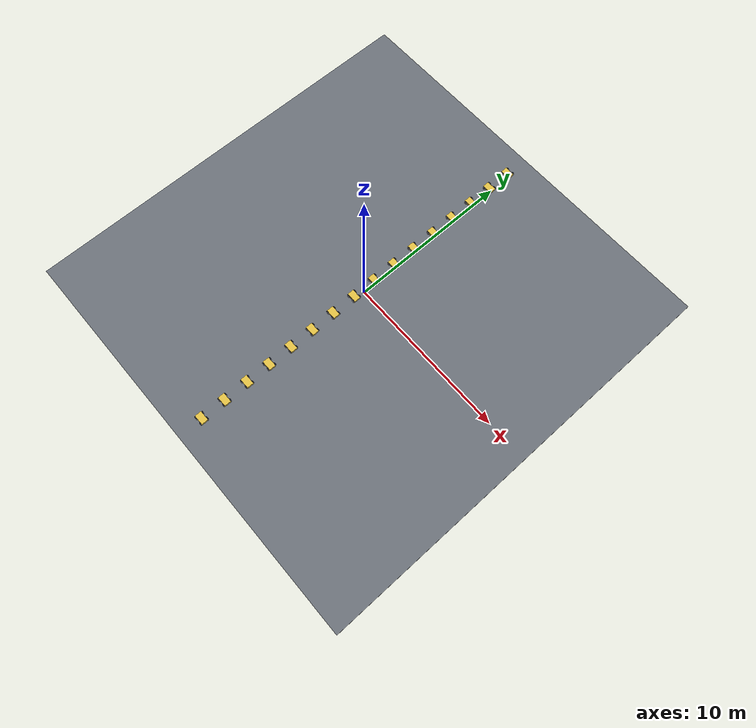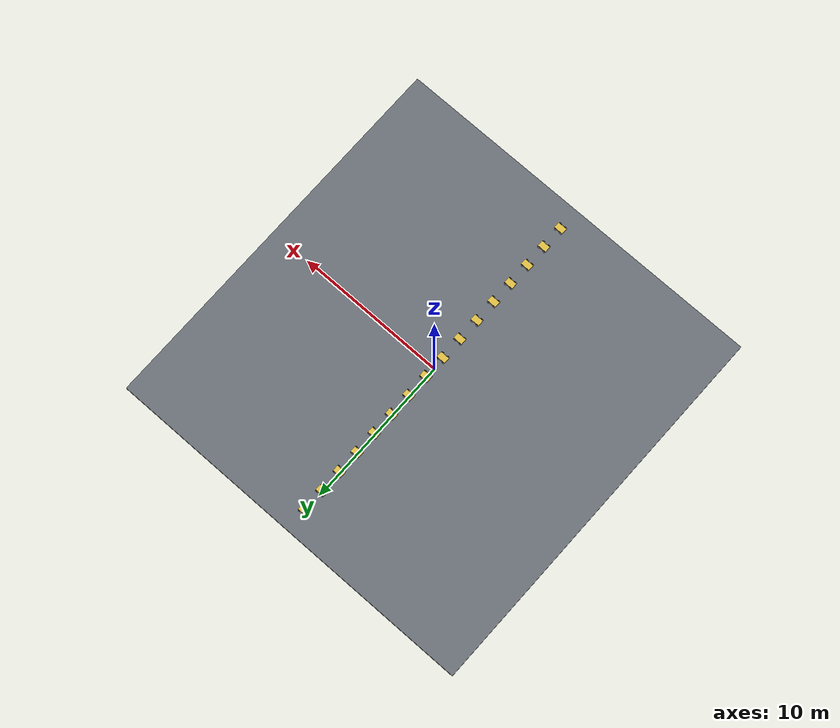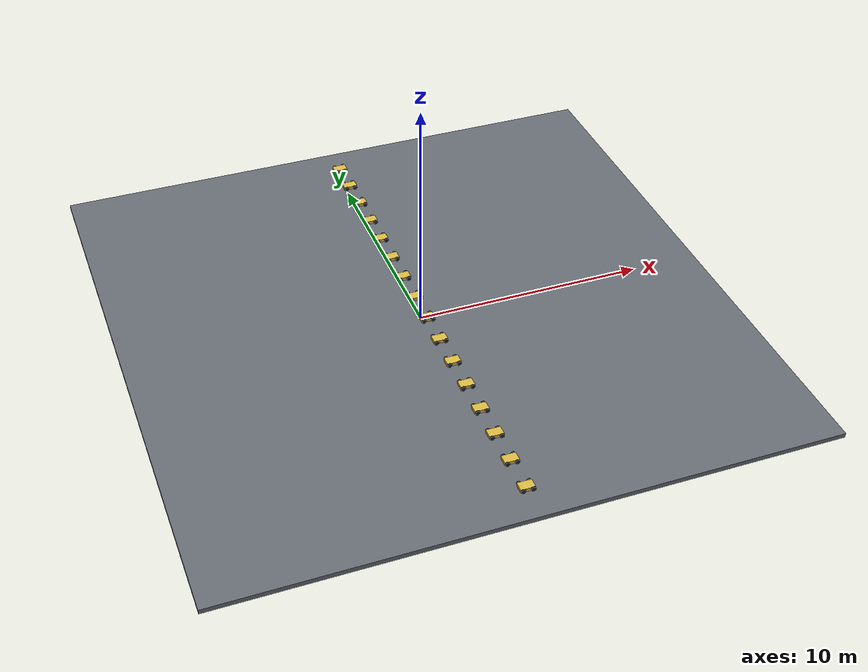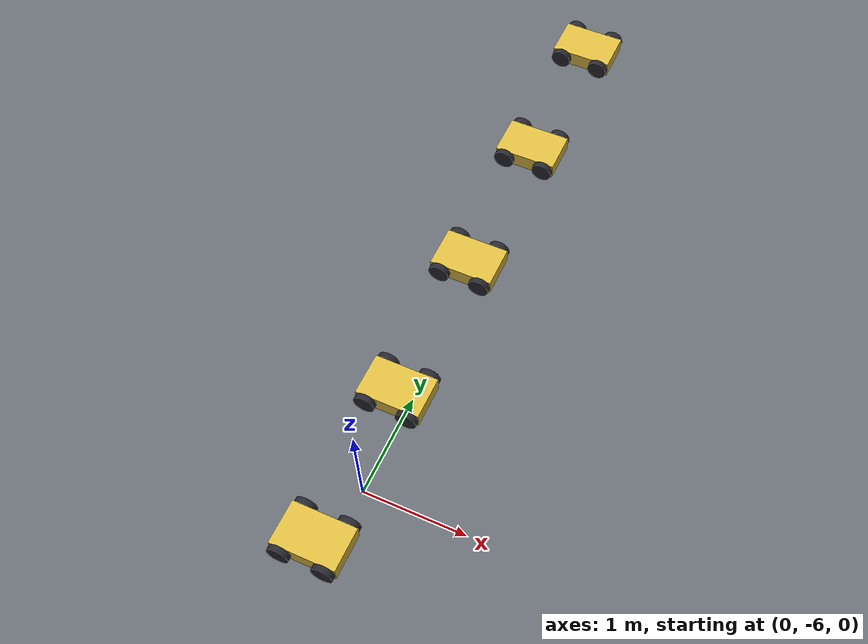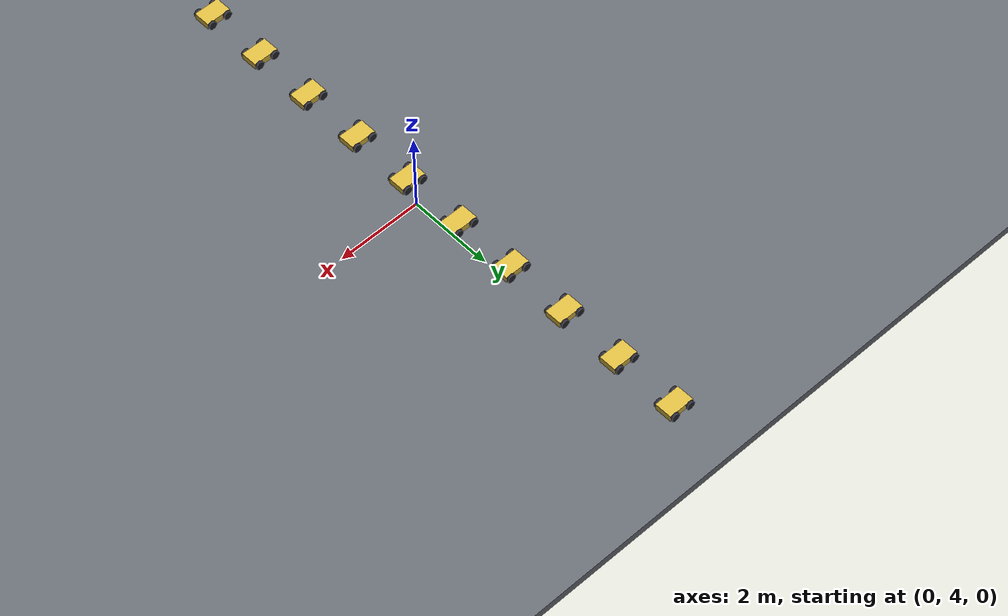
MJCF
<mujoco model="ladder0_rung11_mujoco">

  <!-- Only gravity and the timestep are set from the contract.  Everything
       else is MuJoCo's default, on purpose: this arm is the un-tuned
       reference for the solver OmniSim runs underneath. -->
  <option timestep="0.004" gravity="0 0 -9.81"/>

  <default>
    <!-- sliding / torsional / rolling.  condim defaults to 3, so only the
         first component is in force; the rest are declared for the record. -->
    <geom friction="1.0 0.005 0.0001"/>
  </default>

  <worldbody>
    <!-- Floor slab: full extents 25.200000000000003 x 25.5 x 0.2 m centred at z=0.4,
         so its top surface is at z=0.5.  Deliberately NOT at z=0. -->
    <geom name="floor" type="box" size="12.600000000000001 12.75 0.1" pos="0 0 0.4"
          rgba="0.4 0.42 0.45 1"/>

    <!-- r00: lane y = -11.250 m, commanded 2.0 rad/s -->
    <body name="r00_chassis" pos="0 -11.25 0.6">
      <freejoint name="r00_chassis_free"/>
      <geom name="r00_chassis_geom" type="box" size="0.3 0.2 0.075"
            mass="5.0" rgba="0.85 0.72 0.25 1"/>

      <body name="r00_fl" pos="0.2 0.225 0">
        <joint name="r00_fl_joint" type="hinge" axis="0 1 0"/>
        <geom name="r00_fl_geom" type="cylinder"
              fromto="0 -0.025 0  0 0.025 0" size="0.1" mass="0.5"
              rgba="0.15 0.15 0.18 1"/>
      </body>

      <body name="r00_fr" pos="0.2 -0.225 0">
        <joint name="r00_fr_joint" type="hinge" axis="0 1 0"/>
        <geom name="r00_fr_geom" type="cylinder"
              fromto="0 -0.025 0  0 0.025 0" size="0.1" mass="0.5"
              rgba="0.15 0.15 0.18 1"/>
      </body>

      <body name="r00_rl" pos="-0.2 0.225 0">
        <joint name="r00_rl_joint" type="hinge" axis="0 1 0"/>
        <geom name="r00_rl_geom" type="cylinder"
              fromto="0 -0.025 0  0 0.025 0" size="0.1" mass="0.5"
              rgba="0.15 0.15 0.18 1"/>
      </body>

      <body name="r00_rr" pos="-0.2 -0.225 0">
        <joint name="r00_rr_joint" type="hinge" axis="0 1 0"/>
        <geom name="r00_rr_geom" type="cylinder"
              fromto="0 -0.025 0  0 0.025 0" size="0.1" mass="0.5"
              rgba="0.15 0.15 0.18 1"/>
      </body>
    </body>

    <!-- r01: lane y = -9.750 m, commanded 3.0 rad/s -->
    <body name="r01_chassis" pos="0 -9.75 0.6">
      <freejoint name="r01_chassis_free"/>
      <geom name="r01_chassis_geom" type="box" size="0.3 0.2 0.075"
            mass="5.0" rgba="0.85 0.72 0.25 1"/>

      <body name="r01_fl" pos="0.2 0.225 0">
        <joint name="r01_fl_joint" type="hinge" axis="0 1 0"/>
        <geom name="r01_fl_geom" type="cylinder"
              fromto="0 -0.025 0  0 0.025 0" size="0.1" mass="0.5"
              rgba="0.15 0.15 0.18 1"/>
      </body>

      <body name="r01_fr" pos="0.2 -0.225 0">
        <joint name="r01_fr_joint" type="hinge" axis="0 1 0"/>
        <geom name="r01_fr_geom" type="cylinder"
              fromto="0 -0.025 0  0 0.025 0" size="0.1" mass="0.5"
              rgba="0.15 0.15 0.18 1"/>
      </body>

      <body name="r01_rl" pos="-0.2 0.225 0">
        <joint name="r01_rl_joint" type="hinge" axis="0 1 0"/>
        <geom name="r01_rl_geom" type="cylinder"
              fromto="0 -0.025 0  0 0.025 0" size="0.1" mass="0.5"
              rgba="0.15 0.15 0.18 1"/>
      </body>

      <body name="r01_rr" pos="-0.2 -0.225 0">
        <joint name="r01_rr_joint" type="hinge" axis="0 1 0"/>
        <geom name="r01_rr_geom" type="cylinder"
              fromto="0 -0.025 0  0 0.025 0" size="0.1" mass="0.5"
              rgba="0.15 0.15 0.18 1"/>
      </body>
    </body>

    <!-- r02: lane y = -8.250 m, commanded 4.0 rad/s -->
    <body name="r02_chassis" pos="0 -8.25 0.6">
      <freejoint name="r02_chassis_free"/>
      <geom name="r02_chassis_geom" type="box" size="0.3 0.2 0.075"
            mass="5.0" rgba="0.85 0.72 0.25 1"/>

      <body name="r02_fl" pos="0.2 0.225 0">
        <joint name="r02_fl_joint" type="hinge" axis="0 1 0"/>
        <geom name="r02_fl_geom" type="cylinder"
              fromto="0 -0.025 0  0 0.025 0" size="0.1" mass="0.5"
              rgba="0.15 0.15 0.18 1"/>
      </body>

      <body name="r02_fr" pos="0.2 -0.225 0">
        <joint name="r02_fr_joint" type="hinge" axis="0 1 0"/>
        <geom name="r02_fr_geom" type="cylinder"
              fromto="0 -0.025 0  0 0.025 0" size="0.1" mass="0.5"
              rgba="0.15 0.15 0.18 1"/>
      </body>

      <body name="r02_rl" pos="-0.2 0.225 0">
        <joint name="r02_rl_joint" type="hinge" axis="0 1 0"/>
        <geom name="r02_rl_geom" type="cylinder"
              fromto="0 -0.025 0  0 0.025 0" size="0.1" mass="0.5"
              rgba="0.15 0.15 0.18 1"/>
      </body>

      <body name="r02_rr" pos="-0.2 -0.225 0">
        <joint name="r02_rr_joint" type="hinge" axis="0 1 0"/>
        <geom name="r02_rr_geom" type="cylinder"
              fromto="0 -0.025 0  0 0.025 0" size="0.1" mass="0.5"
              rgba="0.15 0.15 0.18 1"/>
      </body>
    </body>

    <!-- r03: lane y = -6.750 m, commanded 5.0 rad/s -->
    <body name="r03_chassis" pos="0 -6.75 0.6">
      <freejoint name="r03_chassis_free"/>
      <geom name="r03_chassis_geom" type="box" size="0.3 0.2 0.075"
            mass="5.0" rgba="0.85 0.72 0.25 1"/>

      <body name="r03_fl" pos="0.2 0.225 0">
        <joint name="r03_fl_joint" type="hinge" axis="0 1 0"/>
        <geom name="r03_fl_geom" type="cylinder"
              fromto="0 -0.025 0  0 0.025 0" size="0.1" mass="0.5"
              rgba="0.15 0.15 0.18 1"/>
      </body>

      <body name="r03_fr" pos="0.2 -0.225 0">
        <joint name="r03_fr_joint" type="hinge" axis="0 1 0"/>
        <geom name="r03_fr_geom" type="cylinder"
              fromto="0 -0.025 0  0 0.025 0" size="0.1" mass="0.5"
              rgba="0.15 0.15 0.18 1"/>
      </body>

      <body name="r03_rl" pos="-0.2 0.225 0">
        <joint name="r03_rl_joint" type="hinge" axis="0 1 0"/>
        <geom name="r03_rl_geom" type="cylinder"
              fromto="0 -0.025 0  0 0.025 0" size="0.1" mass="0.5"
              rgba="0.15 0.15 0.18 1"/>
      </body>

      <body name="r03_rr" pos="-0.2 -0.225 0">
        <joint name="r03_rr_joint" type="hinge" axis="0 1 0"/>
        <geom name="r03_rr_geom" type="cylinder"
              fromto="0 -0.025 0  0 0.025 0" size="0.1" mass="0.5"
              rgba="0.15 0.15 0.18 1"/>
      </body>
    </body>

    <!-- r04: lane y = -5.250 m, commanded 6.0 rad/s -->
    <body name="r04_chassis" pos="0 -5.25 0.6">
      <freejoint name="r04_chassis_free"/>
      <geom name="r04_chassis_geom" type="box" size="0.3 0.2 0.075"
            mass="5.0" rgba="0.85 0.72 0.25 1"/>

      <body name="r04_fl" pos="0.2 0.225 0">
        <joint name="r04_fl_joint" type="hinge" axis="0 1 0"/>
        <geom name="r04_fl_geom" type="cylinder"
              fromto="0 -0.025 0  0 0.025 0" size="0.1" mass="0.5"
              rgba="0.15 0.15 0.18 1"/>
      </body>

      <body name="r04_fr" pos="0.2 -0.225 0">
        <joint name="r04_fr_joint" type="hinge" axis="0 1 0"/>
        <geom name="r04_fr_geom" type="cylinder"
              fromto="0 -0.025 0  0 0.025 0" size="0.1" mass="0.5"
              rgba="0.15 0.15 0.18 1"/>
      </body>

      <body name="r04_rl" pos="-0.2 0.225 0">
        <joint name="r04_rl_joint" type="hinge" axis="0 1 0"/>
        <geom name="r04_rl_geom" type="cylinder"
              fromto="0 -0.025 0  0 0.025 0" size="0.1" mass="0.5"
              rgba="0.15 0.15 0.18 1"/>
      </body>

      <body name="r04_rr" pos="-0.2 -0.225 0">
        <joint name="r04_rr_joint" type="hinge" axis="0 1 0"/>
        <geom name="r04_rr_geom" type="cylinder"
              fromto="0 -0.025 0  0 0.025 0" size="0.1" mass="0.5"
              rgba="0.15 0.15 0.18 1"/>
      </body>
    </body>

    <!-- r05: lane y = -3.750 m, commanded 2.0 rad/s -->
    <body name="r05_chassis" pos="0 -3.75 0.6">
      <freejoint name="r05_chassis_free"/>
      <geom name="r05_chassis_geom" type="box" size="0.3 0.2 0.075"
            mass="5.0" rgba="0.85 0.72 0.25 1"/>

      <body name="r05_fl" pos="0.2 0.225 0">
        <joint name="r05_fl_joint" type="hinge" axis="0 1 0"/>
        <geom name="r05_fl_geom" type="cylinder"
              fromto="0 -0.025 0  0 0.025 0" size="0.1" mass="0.5"
              rgba="0.15 0.15 0.18 1"/>
      </body>

      <body name="r05_fr" pos="0.2 -0.225 0">
        <joint name="r05_fr_joint" type="hinge" axis="0 1 0"/>
        <geom name="r05_fr_geom" type="cylinder"
              fromto="0 -0.025 0  0 0.025 0" size="0.1" mass="0.5"
              rgba="0.15 0.15 0.18 1"/>
      </body>

      <body name="r05_rl" pos="-0.2 0.225 0">
        <joint name="r05_rl_joint" type="hinge" axis="0 1 0"/>
        <geom name="r05_rl_geom" type="cylinder"
              fromto="0 -0.025 0  0 0.025 0" size="0.1" mass="0.5"
              rgba="0.15 0.15 0.18 1"/>
      </body>

      <body name="r05_rr" pos="-0.2 -0.225 0">
        <joint name="r05_rr_joint" type="hinge" axis="0 1 0"/>
        <geom name="r05_rr_geom" type="cylinder"
              fromto="0 -0.025 0  0 0.025 0" size="0.1" mass="0.5"
              rgba="0.15 0.15 0.18 1"/>
      </body>
    </body>

    <!-- r06: lane y = -2.250 m, commanded 3.0 rad/s -->
    <body name="r06_chassis" pos="0 -2.25 0.6">
      <freejoint name="r06_chassis_free"/>
      <geom name="r06_chassis_geom" type="box" size="0.3 0.2 0.075"
            mass="5.0" rgba="0.85 0.72 0.25 1"/>

      <body name="r06_fl" pos="0.2 0.225 0">
        <joint name="r06_fl_joint" type="hinge" axis="0 1 0"/>
        <geom name="r06_fl_geom" type="cylinder"
              fromto="0 -0.025 0  0 0.025 0" size="0.1" mass="0.5"
              rgba="0.15 0.15 0.18 1"/>
      </body>

      <body name="r06_fr" pos="0.2 -0.225 0">
        <joint name="r06_fr_joint" type="hinge" axis="0 1 0"/>
        <geom name="r06_fr_geom" type="cylinder"
              fromto="0 -0.025 0  0 0.025 0" size="0.1" mass="0.5"
              rgba="0.15 0.15 0.18 1"/>
      </body>

      <body name="r06_rl" pos="-0.2 0.225 0">
        <joint name="r06_rl_joint" type="hinge" axis="0 1 0"/>
        <geom name="r06_rl_geom" type="cylinder"
              fromto="0 -0.025 0  0 0.025 0" size="0.1" mass="0.5"
              rgba="0.15 0.15 0.18 1"/>
      </body>

      <body name="r06_rr" pos="-0.2 -0.225 0">
        <joint name="r06_rr_joint" type="hinge" axis="0 1 0"/>
        <geom name="r06_rr_geom" type="cylinder"
              fromto="0 -0.025 0  0 0.025 0" size="0.1" mass="0.5"
              rgba="0.15 0.15 0.18 1"/>
      </body>
    </body>

    <!-- r07: lane y = -0.750 m, commanded 4.0 rad/s -->
    <body name="r07_chassis" pos="0 -0.75 0.6">
      <freejoint name="r07_chassis_free"/>
      <geom name="r07_chassis_geom" type="box" size="0.3 0.2 0.075"
            mass="5.0" rgba="0.85 0.72 0.25 1"/>

      <body name="r07_fl" pos="0.2 0.225 0">
        <joint name="r07_fl_joint" type="hinge" axis="0 1 0"/>
        <geom name="r07_fl_geom" type="cylinder"
              fromto="0 -0.025 0  0 0.025 0" size="0.1" mass="0.5"
              rgba="0.15 0.15 0.18 1"/>
      </body>

      <body name="r07_fr" pos="0.2 -0.225 0">
        <joint name="r07_fr_joint" type="hinge" axis="0 1 0"/>
        <geom name="r07_fr_geom" type="cylinder"
              fromto="0 -0.025 0  0 0.025 0" size="0.1" mass="0.5"
              rgba="0.15 0.15 0.18 1"/>
      </body>

      <body name="r07_rl" pos="-0.2 0.225 0">
        <joint name="r07_rl_joint" type="hinge" axis="0 1 0"/>
        <geom name="r07_rl_geom" type="cylinder"
              fromto="0 -0.025 0  0 0.025 0" size="0.1" mass="0.5"
              rgba="0.15 0.15 0.18 1"/>
      </body>

      <body name="r07_rr" pos="-0.2 -0.225 0">
        <joint name="r07_rr_joint" type="hinge" axis="0 1 0"/>
        <geom name="r07_rr_geom" type="cylinder"
              fromto="0 -0.025 0  0 0.025 0" size="0.1" mass="0.5"
              rgba="0.15 0.15 0.18 1"/>
      </body>
    </body>

    <!-- r08: lane y = +0.750 m, commanded 5.0 rad/s -->
    <body name="r08_chassis" pos="0 0.75 0.6">
      <freejoint name="r08_chassis_free"/>
      <geom name="r08_chassis_geom" type="box" size="0.3 0.2 0.075"
            mass="5.0" rgba="0.85 0.72 0.25 1"/>

      <body name="r08_fl" pos="0.2 0.225 0">
        <joint name="r08_fl_joint" type="hinge" axis="0 1 0"/>
        <geom name="r08_fl_geom" type="cylinder"
              fromto="0 -0.025 0  0 0.025 0" size="0.1" mass="0.5"
              rgba="0.15 0.15 0.18 1"/>
      </body>

      <body name="r08_fr" pos="0.2 -0.225 0">
        <joint name="r08_fr_joint" type="hinge" axis="0 1 0"/>
        <geom name="r08_fr_geom" type="cylinder"
              fromto="0 -0.025 0  0 0.025 0" size="0.1" mass="0.5"
              rgba="0.15 0.15 0.18 1"/>
      </body>

      <body name="r08_rl" pos="-0.2 0.225 0">
        <joint name="r08_rl_joint" type="hinge" axis="0 1 0"/>
        <geom name="r08_rl_geom" type="cylinder"
              fromto="0 -0.025 0  0 0.025 0" size="0.1" mass="0.5"
              rgba="0.15 0.15 0.18 1"/>
      </body>

      <body name="r08_rr" pos="-0.2 -0.225 0">
        <joint name="r08_rr_joint" type="hinge" axis="0 1 0"/>
        <geom name="r08_rr_geom" type="cylinder"
              fromto="0 -0.025 0  0 0.025 0" size="0.1" mass="0.5"
              rgba="0.15 0.15 0.18 1"/>
      </body>
    </body>

    <!-- r09: lane y = +2.250 m, commanded 6.0 rad/s -->
    <body name="r09_chassis" pos="0 2.25 0.6">
      <freejoint name="r09_chassis_free"/>
      <geom name="r09_chassis_geom" type="box" size="0.3 0.2 0.075"
            mass="5.0" rgba="0.85 0.72 0.25 1"/>

      <body name="r09_fl" pos="0.2 0.225 0">
        <joint name="r09_fl_joint" type="hinge" axis="0 1 0"/>
        <geom name="r09_fl_geom" type="cylinder"
              fromto="0 -0.025 0  0 0.025 0" size="0.1" mass="0.5"
              rgba="0.15 0.15 0.18 1"/>
      </body>

      <body name="r09_fr" pos="0.2 -0.225 0">
        <joint name="r09_fr_joint" type="hinge" axis="0 1 0"/>
        <geom name="r09_fr_geom" type="cylinder"
              fromto="0 -0.025 0  0 0.025 0" size="0.1" mass="0.5"
              rgba="0.15 0.15 0.18 1"/>
      </body>

      <body name="r09_rl" pos="-0.2 0.225 0">
        <joint name="r09_rl_joint" type="hinge" axis="0 1 0"/>
        <geom name="r09_rl_geom" type="cylinder"
              fromto="0 -0.025 0  0 0.025 0" size="0.1" mass="0.5"
              rgba="0.15 0.15 0.18 1"/>
      </body>

      <body name="r09_rr" pos="-0.2 -0.225 0">
        <joint name="r09_rr_joint" type="hinge" axis="0 1 0"/>
        <geom name="r09_rr_geom" type="cylinder"
              fromto="0 -0.025 0  0 0.025 0" size="0.1" mass="0.5"
              rgba="0.15 0.15 0.18 1"/>
      </body>
    </body>

    <!-- r10: lane y = +3.750 m, commanded 2.0 rad/s -->
    <body name="r10_chassis" pos="0 3.75 0.6">
      <freejoint name="r10_chassis_free"/>
      <geom name="r10_chassis_geom" type="box" size="0.3 0.2 0.075"
            mass="5.0" rgba="0.85 0.72 0.25 1"/>

      <body name="r10_fl" pos="0.2 0.225 0">
        <joint name="r10_fl_joint" type="hinge" axis="0 1 0"/>
        <geom name="r10_fl_geom" type="cylinder"
              fromto="0 -0.025 0  0 0.025 0" size="0.1" mass="0.5"
              rgba="0.15 0.15 0.18 1"/>
      </body>

      <body name="r10_fr" pos="0.2 -0.225 0">
        <joint name="r10_fr_joint" type="hinge" axis="0 1 0"/>
        <geom name="r10_fr_geom" type="cylinder"
              fromto="0 -0.025 0  0 0.025 0" size="0.1" mass="0.5"
              rgba="0.15 0.15 0.18 1"/>
      </body>

      <body name="r10_rl" pos="-0.2 0.225 0">
        <joint name="r10_rl_joint" type="hinge" axis="0 1 0"/>
        <geom name="r10_rl_geom" type="cylinder"
              fromto="0 -0.025 0  0 0.025 0" size="0.1" mass="0.5"
              rgba="0.15 0.15 0.18 1"/>
      </body>

      <body name="r10_rr" pos="-0.2 -0.225 0">
        <joint name="r10_rr_joint" type="hinge" axis="0 1 0"/>
        <geom name="r10_rr_geom" type="cylinder"
              fromto="0 -0.025 0  0 0.025 0" size="0.1" mass="0.5"
              rgba="0.15 0.15 0.18 1"/>
      </body>
    </body>

    <!-- r11: lane y = +5.250 m, commanded 3.0 rad/s -->
    <body name="r11_chassis" pos="0 5.25 0.6">
      <freejoint name="r11_chassis_free"/>
      <geom name="r11_chassis_geom" type="box" size="0.3 0.2 0.075"
            mass="5.0" rgba="0.85 0.72 0.25 1"/>

      <body name="r11_fl" pos="0.2 0.225 0">
        <joint name="r11_fl_joint" type="hinge" axis="0 1 0"/>
        <geom name="r11_fl_geom" type="cylinder"
              fromto="0 -0.025 0  0 0.025 0" size="0.1" mass="0.5"
              rgba="0.15 0.15 0.18 1"/>
      </body>

      <body name="r11_fr" pos="0.2 -0.225 0">
        <joint name="r11_fr_joint" type="hinge" axis="0 1 0"/>
        <geom name="r11_fr_geom" type="cylinder"
              fromto="0 -0.025 0  0 0.025 0" size="0.1" mass="0.5"
              rgba="0.15 0.15 0.18 1"/>
      </body>

      <body name="r11_rl" pos="-0.2 0.225 0">
        <joint name="r11_rl_joint" type="hinge" axis="0 1 0"/>
        <geom name="r11_rl_geom" type="cylinder"
              fromto="0 -0.025 0  0 0.025 0" size="0.1" mass="0.5"
              rgba="0.15 0.15 0.18 1"/>
      </body>

      <body name="r11_rr" pos="-0.2 -0.225 0">
        <joint name="r11_rr_joint" type="hinge" axis="0 1 0"/>
        <geom name="r11_rr_geom" type="cylinder"
              fromto="0 -0.025 0  0 0.025 0" size="0.1" mass="0.5"
              rgba="0.15 0.15 0.18 1"/>
      </body>
    </body>

    <!-- r12: lane y = +6.750 m, commanded 4.0 rad/s -->
    <body name="r12_chassis" pos="0 6.75 0.6">
      <freejoint name="r12_chassis_free"/>
      <geom name="r12_chassis_geom" type="box" size="0.3 0.2 0.075"
            mass="5.0" rgba="0.85 0.72 0.25 1"/>

      <body name="r12_fl" pos="0.2 0.225 0">
        <joint name="r12_fl_joint" type="hinge" axis="0 1 0"/>
        <geom name="r12_fl_geom" type="cylinder"
              fromto="0 -0.025 0  0 0.025 0" size="0.1" mass="0.5"
              rgba="0.15 0.15 0.18 1"/>
      </body>

      <body name="r12_fr" pos="0.2 -0.225 0">
        <joint name="r12_fr_joint" type="hinge" axis="0 1 0"/>
        <geom name="r12_fr_geom" type="cylinder"
              fromto="0 -0.025 0  0 0.025 0" size="0.1" mass="0.5"
              rgba="0.15 0.15 0.18 1"/>
      </body>

      <body name="r12_rl" pos="-0.2 0.225 0">
        <joint name="r12_rl_joint" type="hinge" axis="0 1 0"/>
        <geom name="r12_rl_geom" type="cylinder"
              fromto="0 -0.025 0  0 0.025 0" size="0.1" mass="0.5"
              rgba="0.15 0.15 0.18 1"/>
      </body>

      <body name="r12_rr" pos="-0.2 -0.225 0">
        <joint name="r12_rr_joint" type="hinge" axis="0 1 0"/>
        <geom name="r12_rr_geom" type="cylinder"
              fromto="0 -0.025 0  0 0.025 0" size="0.1" mass="0.5"
              rgba="0.15 0.15 0.18 1"/>
      </body>
    </body>

    <!-- r13: lane y = +8.250 m, commanded 5.0 rad/s -->
    <body name="r13_chassis" pos="0 8.25 0.6">
      <freejoint name="r13_chassis_free"/>
      <geom name="r13_chassis_geom" type="box" size="0.3 0.2 0.075"
            mass="5.0" rgba="0.85 0.72 0.25 1"/>

      <body name="r13_fl" pos="0.2 0.225 0">
        <joint name="r13_fl_joint" type="hinge" axis="0 1 0"/>
        <geom name="r13_fl_geom" type="cylinder"
              fromto="0 -0.025 0  0 0.025 0" size="0.1" mass="0.5"
              rgba="0.15 0.15 0.18 1"/>
      </body>

      <body name="r13_fr" pos="0.2 -0.225 0">
        <joint name="r13_fr_joint" type="hinge" axis="0 1 0"/>
        <geom name="r13_fr_geom" type="cylinder"
              fromto="0 -0.025 0  0 0.025 0" size="0.1" mass="0.5"
              rgba="0.15 0.15 0.18 1"/>
      </body>

      <body name="r13_rl" pos="-0.2 0.225 0">
        <joint name="r13_rl_joint" type="hinge" axis="0 1 0"/>
        <geom name="r13_rl_geom" type="cylinder"
              fromto="0 -0.025 0  0 0.025 0" size="0.1" mass="0.5"
              rgba="0.15 0.15 0.18 1"/>
      </body>

      <body name="r13_rr" pos="-0.2 -0.225 0">
        <joint name="r13_rr_joint" type="hinge" axis="0 1 0"/>
        <geom name="r13_rr_geom" type="cylinder"
              fromto="0 -0.025 0  0 0.025 0" size="0.1" mass="0.5"
              rgba="0.15 0.15 0.18 1"/>
      </body>
    </body>

    <!-- r14: lane y = +9.750 m, commanded 6.0 rad/s -->
    <body name="r14_chassis" pos="0 9.75 0.6">
      <freejoint name="r14_chassis_free"/>
      <geom name="r14_chassis_geom" type="box" size="0.3 0.2 0.075"
            mass="5.0" rgba="0.85 0.72 0.25 1"/>

      <body name="r14_fl" pos="0.2 0.225 0">
        <joint name="r14_fl_joint" type="hinge" axis="0 1 0"/>
        <geom name="r14_fl_geom" type="cylinder"
              fromto="0 -0.025 0  0 0.025 0" size="0.1" mass="0.5"
              rgba="0.15 0.15 0.18 1"/>
      </body>

      <body name="r14_fr" pos="0.2 -0.225 0">
        <joint name="r14_fr_joint" type="hinge" axis="0 1 0"/>
        <geom name="r14_fr_geom" type="cylinder"
              fromto="0 -0.025 0  0 0.025 0" size="0.1" mass="0.5"
              rgba="0.15 0.15 0.18 1"/>
      </body>

      <body name="r14_rl" pos="-0.2 0.225 0">
        <joint name="r14_rl_joint" type="hinge" axis="0 1 0"/>
        <geom name="r14_rl_geom" type="cylinder"
              fromto="0 -0.025 0  0 0.025 0" size="0.1" mass="0.5"
              rgba="0.15 0.15 0.18 1"/>
      </body>

      <body name="r14_rr" pos="-0.2 -0.225 0">
        <joint name="r14_rr_joint" type="hinge" axis="0 1 0"/>
        <geom name="r14_rr_geom" type="cylinder"
              fromto="0 -0.025 0  0 0.025 0" size="0.1" mass="0.5"
              rgba="0.15 0.15 0.18 1"/>
      </body>
    </body>

    <!-- r15: lane y = +11.250 m, commanded 2.0 rad/s -->
    <body name="r15_chassis" pos="0 11.25 0.6">
      <freejoint name="r15_chassis_free"/>
      <geom name="r15_chassis_geom" type="box" size="0.3 0.2 0.075"
            mass="5.0" rgba="0.85 0.72 0.25 1"/>

      <body name="r15_fl" pos="0.2 0.225 0">
        <joint name="r15_fl_joint" type="hinge" axis="0 1 0"/>
        <geom name="r15_fl_geom" type="cylinder"
              fromto="0 -0.025 0  0 0.025 0" size="0.1" mass="0.5"
              rgba="0.15 0.15 0.18 1"/>
      </body>

      <body name="r15_fr" pos="0.2 -0.225 0">
        <joint name="r15_fr_joint" type="hinge" axis="0 1 0"/>
        <geom name="r15_fr_geom" type="cylinder"
              fromto="0 -0.025 0  0 0.025 0" size="0.1" mass="0.5"
              rgba="0.15 0.15 0.18 1"/>
      </body>

      <body name="r15_rl" pos="-0.2 0.225 0">
        <joint name="r15_rl_joint" type="hinge" axis="0 1 0"/>
        <geom name="r15_rl_geom" type="cylinder"
              fromto="0 -0.025 0  0 0.025 0" size="0.1" mass="0.5"
              rgba="0.15 0.15 0.18 1"/>
      </body>

      <body name="r15_rr" pos="-0.2 -0.225 0">
        <joint name="r15_rr_joint" type="hinge" axis="0 1 0"/>
        <geom name="r15_rr_geom" type="cylinder"
              fromto="0 -0.025 0  0 0.025 0" size="0.1" mass="0.5"
              rgba="0.15 0.15 0.18 1"/>
      </body>
    </body>
  </worldbody>

  <actuator>
    <!-- Deadbeat velocity servo: kv = I/dt = 0.625000, half the
         explicit-Euler stability bound 2I/dt, for a wheel's
         own I = m r^2 / 2 = 0.002500 kg m^2. -->
    <velocity name="r00_fl_motor" joint="r00_fl_joint" kv="0.625000"/>
    <velocity name="r00_fr_motor" joint="r00_fr_joint" kv="0.625000"/>
    <velocity name="r00_rl_motor" joint="r00_rl_joint" kv="0.625000"/>
    <velocity name="r00_rr_motor" joint="r00_rr_joint" kv="0.625000"/>
    <!-- Deadbeat velocity servo: kv = I/dt = 0.625000, half the
         explicit-Euler stability bound 2I/dt, for a wheel's
         own I = m r^2 / 2 = 0.002500 kg m^2. -->
    <velocity name="r01_fl_motor" joint="r01_fl_joint" kv="0.625000"/>
    <velocity name="r01_fr_motor" joint="r01_fr_joint" kv="0.625000"/>
    <velocity name="r01_rl_motor" joint="r01_rl_joint" kv="0.625000"/>
    <velocity name="r01_rr_motor" joint="r01_rr_joint" kv="0.625000"/>
    <!-- Deadbeat velocity servo: kv = I/dt = 0.625000, half the
         explicit-Euler stability bound 2I/dt, for a wheel's
         own I = m r^2 / 2 = 0.002500 kg m^2. -->
    <velocity name="r02_fl_motor" joint="r02_fl_joint" kv="0.625000"/>
    <velocity name="r02_fr_motor" joint="r02_fr_joint" kv="0.625000"/>
    <velocity name="r02_rl_motor" joint="r02_rl_joint" kv="0.625000"/>
    <velocity name="r02_rr_motor" joint="r02_rr_joint" kv="0.625000"/>
    <!-- Deadbeat velocity servo: kv = I/dt = 0.625000, half the
         explicit-Euler stability bound 2I/dt, for a wheel's
         own I = m r^2 / 2 = 0.002500 kg m^2. -->
    <velocity name="r03_fl_motor" joint="r03_fl_joint" kv="0.625000"/>
    <velocity name="r03_fr_motor" joint="r03_fr_joint" kv="0.625000"/>
    <velocity name="r03_rl_motor" joint="r03_rl_joint" kv="0.625000"/>
    <velocity name="r03_rr_motor" joint="r03_rr_joint" kv="0.625000"/>
    <!-- Deadbeat velocity servo: kv = I/dt = 0.625000, half the
         explicit-Euler stability bound 2I/dt, for a wheel's
         own I = m r^2 / 2 = 0.002500 kg m^2. -->
    <velocity name="r04_fl_motor" joint="r04_fl_joint" kv="0.625000"/>
    <velocity name="r04_fr_motor" joint="r04_fr_joint" kv="0.625000"/>
    <velocity name="r04_rl_motor" joint="r04_rl_joint" kv="0.625000"/>
    <velocity name="r04_rr_motor" joint="r04_rr_joint" kv="0.625000"/>
    <!-- Deadbeat velocity servo: kv = I/dt = 0.625000, half the
         explicit-Euler stability bound 2I/dt, for a wheel's
         own I = m r^2 / 2 = 0.002500 kg m^2. -->
    <velocity name="r05_fl_motor" joint="r05_fl_joint" kv="0.625000"/>
    <velocity name="r05_fr_motor" joint="r05_fr_joint" kv="0.625000"/>
    <velocity name="r05_rl_motor" joint="r05_rl_joint" kv="0.625000"/>
    <velocity name="r05_rr_motor" joint="r05_rr_joint" kv="0.625000"/>
    <!-- Deadbeat velocity servo: kv = I/dt = 0.625000, half the
         explicit-Euler stability bound 2I/dt, for a wheel's
         own I = m r^2 / 2 = 0.002500 kg m^2. -->
    <velocity name="r06_fl_motor" joint="r06_fl_joint" kv="0.625000"/>
    <velocity name="r06_fr_motor" joint="r06_fr_joint" kv="0.625000"/>
    <velocity name="r06_rl_motor" joint="r06_rl_joint" kv="0.625000"/>
    <velocity name="r06_rr_motor" joint="r06_rr_joint" kv="0.625000"/>
    <!-- Deadbeat velocity servo: kv = I/dt = 0.625000, half the
         explicit-Euler stability bound 2I/dt, for a wheel's
         own I = m r^2 / 2 = 0.002500 kg m^2. -->
    <velocity name="r07_fl_motor" joint="r07_fl_joint" kv="0.625000"/>
    <velocity name="r07_fr_motor" joint="r07_fr_joint" kv="0.625000"/>
    <velocity name="r07_rl_motor" joint="r07_rl_joint" kv="0.625000"/>
    <velocity name="r07_rr_motor" joint="r07_rr_joint" kv="0.625000"/>
    <!-- Deadbeat velocity servo: kv = I/dt = 0.625000, half the
         explicit-Euler stability bound 2I/dt, for a wheel's
         own I = m r^2 / 2 = 0.002500 kg m^2. -->
    <velocity name="r08_fl_motor" joint="r08_fl_joint" kv="0.625000"/>
    <velocity name="r08_fr_motor" joint="r08_fr_joint" kv="0.625000"/>
    <velocity name="r08_rl_motor" joint="r08_rl_joint" kv="0.625000"/>
    <velocity name="r08_rr_motor" joint="r08_rr_joint" kv="0.625000"/>
    <!-- Deadbeat velocity servo: kv = I/dt = 0.625000, half the
         explicit-Euler stability bound 2I/dt, for a wheel's
         own I = m r^2 / 2 = 0.002500 kg m^2. -->
    <velocity name="r09_fl_motor" joint="r09_fl_joint" kv="0.625000"/>
    <velocity name="r09_fr_motor" joint="r09_fr_joint" kv="0.625000"/>
    <velocity name="r09_rl_motor" joint="r09_rl_joint" kv="0.625000"/>
    <velocity name="r09_rr_motor" joint="r09_rr_joint" kv="0.625000"/>
    <!-- Deadbeat velocity servo: kv = I/dt = 0.625000, half the
         explicit-Euler stability bound 2I/dt, for a wheel's
         own I = m r^2 / 2 = 0.002500 kg m^2. -->
    <velocity name="r10_fl_motor" joint="r10_fl_joint" kv="0.625000"/>
    <velocity name="r10_fr_motor" joint="r10_fr_joint" kv="0.625000"/>
    <velocity name="r10_rl_motor" joint="r10_rl_joint" kv="0.625000"/>
    <velocity name="r10_rr_motor" joint="r10_rr_joint" kv="0.625000"/>
    <!-- Deadbeat velocity servo: kv = I/dt = 0.625000, half the
         explicit-Euler stability bound 2I/dt, for a wheel's
         own I = m r^2 / 2 = 0.002500 kg m^2. -->
    <velocity name="r11_fl_motor" joint="r11_fl_joint" kv="0.625000"/>
    <velocity name="r11_fr_motor" joint="r11_fr_joint" kv="0.625000"/>
    <velocity name="r11_rl_motor" joint="r11_rl_joint" kv="0.625000"/>
    <velocity name="r11_rr_motor" joint="r11_rr_joint" kv="0.625000"/>
    <!-- Deadbeat velocity servo: kv = I/dt = 0.625000, half the
         explicit-Euler stability bound 2I/dt, for a wheel's
         own I = m r^2 / 2 = 0.002500 kg m^2. -->
    <velocity name="r12_fl_motor" joint="r12_fl_joint" kv="0.625000"/>
    <velocity name="r12_fr_motor" joint="r12_fr_joint" kv="0.625000"/>
    <velocity name="r12_rl_motor" joint="r12_rl_joint" kv="0.625000"/>
    <velocity name="r12_rr_motor" joint="r12_rr_joint" kv="0.625000"/>
    <!-- Deadbeat velocity servo: kv = I/dt = 0.625000, half the
         explicit-Euler stability bound 2I/dt, for a wheel's
         own I = m r^2 / 2 = 0.002500 kg m^2. -->
    <velocity name="r13_fl_motor" joint="r13_fl_joint" kv="0.625000"/>
    <velocity name="r13_fr_motor" joint="r13_fr_joint" kv="0.625000"/>
    <velocity name="r13_rl_motor" joint="r13_rl_joint" kv="0.625000"/>
    <velocity name="r13_rr_motor" joint="r13_rr_joint" kv="0.625000"/>
    <!-- Deadbeat velocity servo: kv = I/dt = 0.625000, half the
         explicit-Euler stability bound 2I/dt, for a wheel's
         own I = m r^2 / 2 = 0.002500 kg m^2. -->
    <velocity name="r14_fl_motor" joint="r14_fl_joint" kv="0.625000"/>
    <velocity name="r14_fr_motor" joint="r14_fr_joint" kv="0.625000"/>
    <velocity name="r14_rl_motor" joint="r14_rl_joint" kv="0.625000"/>
    <velocity name="r14_rr_motor" joint="r14_rr_joint" kv="0.625000"/>
    <!-- Deadbeat velocity servo: kv = I/dt = 0.625000, half the
         explicit-Euler stability bound 2I/dt, for a wheel's
         own I = m r^2 / 2 = 0.002500 kg m^2. -->
    <velocity name="r15_fl_motor" joint="r15_fl_joint" kv="0.625000"/>
    <velocity name="r15_fr_motor" joint="r15_fr_joint" kv="0.625000"/>
    <velocity name="r15_rl_motor" joint="r15_rl_joint" kv="0.625000"/>
    <velocity name="r15_rr_motor" joint="r15_rr_joint" kv="0.625000"/>
  </actuator>

</mujoco>
